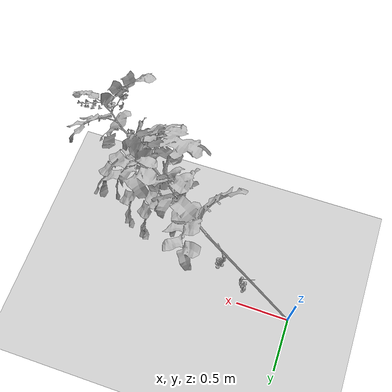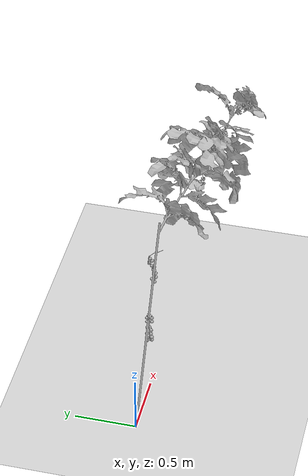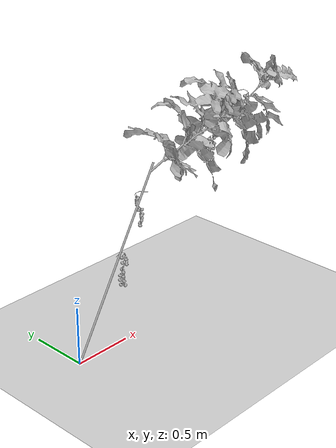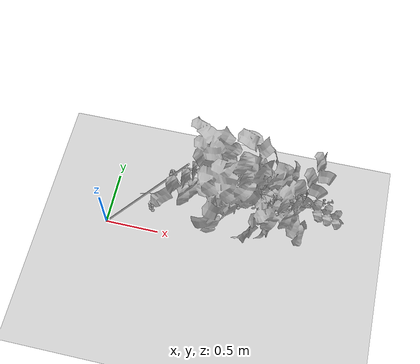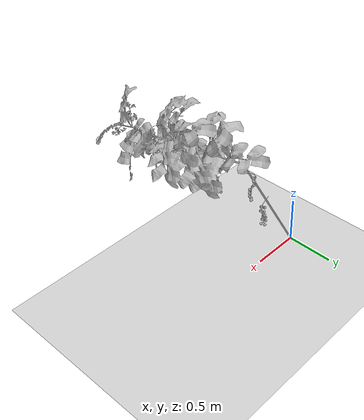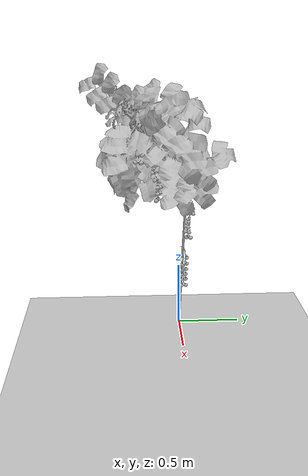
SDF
<?xml version="1.0"?>
<sdf version="1.6">
  <world name="vineverify">
    <include><uri>model://sun</uri></include>
    <include><uri>model://ground_plane</uri></include>
    <include><uri>model://tomato_vine_repo</uri><pose>0 0 0 0 0 0</pose></include>
    <model name="cam_full">
      <static>true</static>
      <pose>3.2 -2.4 1.5 0 0.03 2.37</pose>
      <link name="link">
        <sensor type="camera" name="cam">
          <update_rate>5</update_rate>
          <camera><horizontal_fov>0.95</horizontal_fov><image><width>640</width><height>480</height><format>R8G8B8</format></image><clip><near>0.05</near><far>30</far></clip></camera>
          <always_on>true</always_on><visualize>false</visualize>
          <plugin name="p1" filename="libgazebo_ros_camera.so"><ros><namespace>/v1</namespace></ros></plugin>
        </sensor>
      </link>
    </model>
    <model name="cam_low">
      <static>true</static>
      <pose>2.0 -1.7 1.05 0 0.05 2.27</pose>
      <link name="link">
        <sensor type="camera" name="cam">
          <update_rate>5</update_rate>
          <camera><horizontal_fov>0.85</horizontal_fov><image><width>640</width><height>480</height><format>R8G8B8</format></image><clip><near>0.05</near><far>30</far></clip></camera>
          <always_on>true</always_on><visualize>false</visualize>
          <plugin name="p2" filename="libgazebo_ros_camera.so"><ros><namespace>/v2</namespace></ros></plugin>
        </sensor>
      </link>
    </model>
    <model name="cam_head">
      <static>true</static>
      <pose>0.9 -2.1 1.38 0 0.02 1.62</pose>
      <link name="link">
        <sensor type="camera" name="cam">
          <update_rate>5</update_rate>
          <camera><horizontal_fov>0.8</horizontal_fov><image><width>640</width><height>480</height><format>R8G8B8</format></image><clip><near>0.05</near><far>30</far></clip></camera>
          <always_on>true</always_on><visualize>false</visualize>
          <plugin name="p3" filename="libgazebo_ros_camera.so"><ros><namespace>/v3</namespace></ros></plugin>
        </sensor>
      </link>
    </model>
  </world>
</sdf>

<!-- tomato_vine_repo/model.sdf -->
<sdf version="1.6">
  <model name="tomato_vine_repo">
    <static>true</static>
    <link name="link">
      <collision name="collision_trunk">
        <geometry><cylinder><radius>0.014</radius><length>1.674</length></cylinder></geometry>
        <pose>0.4185 0 0.7249 0 0.5236 0</pose>
      </collision>
      <visual name="plant">
        <geometry>
          <mesh>
            <uri>model://tomato_vine_repo/meshes/tomato_vine_repo.dae</uri>
          </mesh>
        </geometry>
      </visual>
    </link>
  </model>
</sdf>
